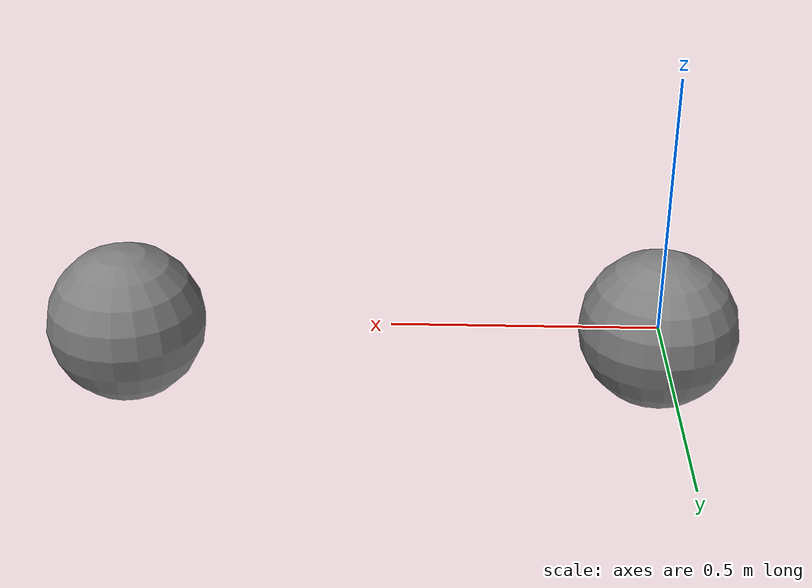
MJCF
<mujoco model="sliding_mass">
  <compiler inertiafromgeom="false" autolimits="true"/>
  <option gravity="0 0 0" timestep="0.001"/>
  <custom>
    <numeric data="0.2" name="joint_scale_pos"/>
    <numeric data="0.2" name="joint_scale_ang"/>
  </custom>
  <worldbody>
    <body name="body1" pos="0 0 0">
      <joint axis="0 1 0" name="hinge1" pos="0 0 0" range="-90 90" type="hinge"/>
      <joint axis="1 0 0" name="slide1" pos="0 0 0" range="-2 2" type="slide"/>
      <joint axis="0 0 1" name="slide2" pos="0 0 0" range="-2 2" type="slide"/>
      <geom name="sphere1" pos="1.0 0.0 0" size=".15" mass="1" type="sphere"/>
      <geom name="sphere2" pos="0.0 0.0 0" size=".15" mass="1" type="sphere"/>
      <inertial pos="0 0.0 0" mass="1" diaginertia="1. 1. 1."/>
    </body>
  </worldbody>
</mujoco>
